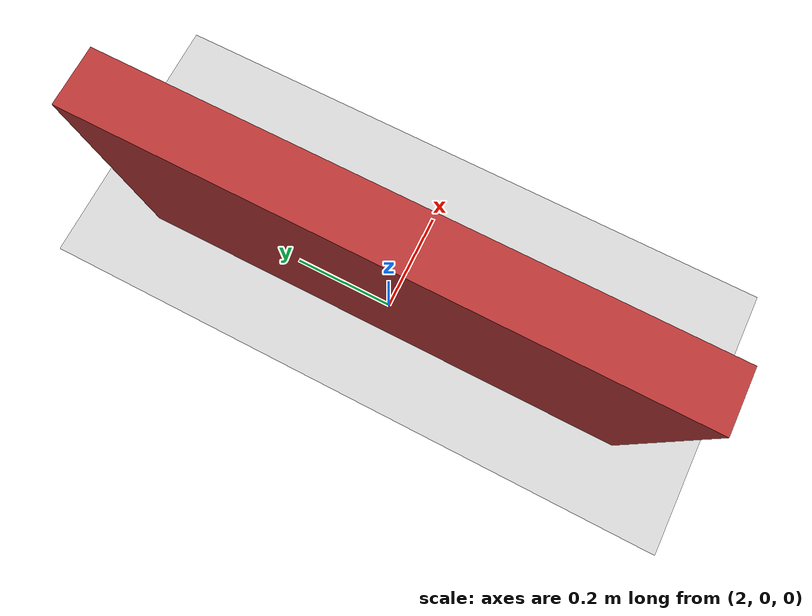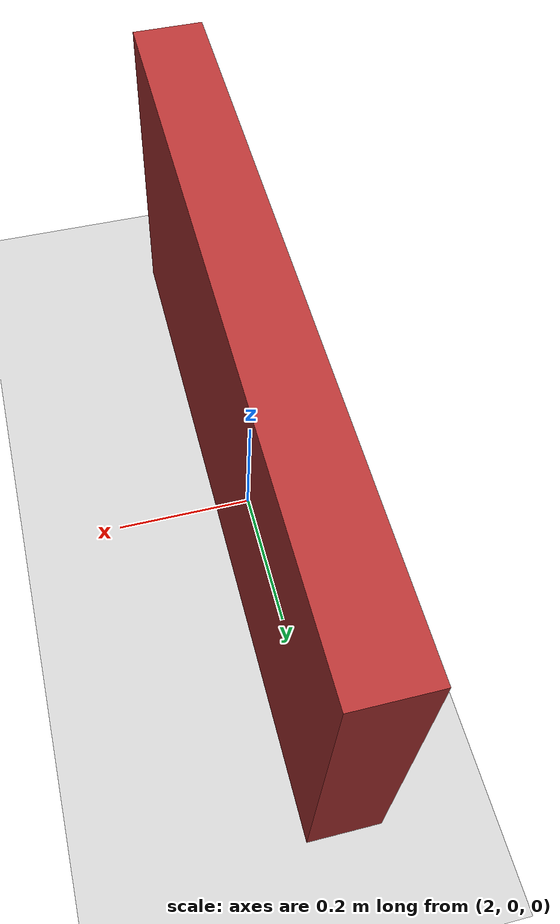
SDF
<?xml version="1.0" ?>

<sdf version="1.10">

  <world name="iot_car_world">

    <!-- Physik                                                 -->

    <physics name="iot_car_physics" type="ignored">
      <max_step_size>0.005</max_step_size>
      <real_time_factor>1.0</real_time_factor>
    </physics>

    <!-- Gazebo-Systeme                                         -->

    <plugin
      filename="gz-sim-physics-system"
      name="gz::sim::systems::Physics">
    </plugin>

    <plugin
      filename="gz-sim-user-commands-system"
      name="gz::sim::systems::UserCommands">
    </plugin>

    <plugin
      filename="gz-sim-scene-broadcaster-system"
      name="gz::sim::systems::SceneBroadcaster">
    </plugin>

    <!-- Sensor-System                                          -->
    <!--
         WICHTIG:
         Die Gazebo-GUI läuft weiterhin mit Ogre 1.
         Die Kamera-Sensoren verwenden separat Ogre 2.
    -->

    <plugin
      filename="gz-sim-sensors-system"
      name="gz::sim::systems::Sensors">

      <render_engine>ogre2</render_engine>

    </plugin>

    <!-- Szene                                                  -->

    <scene>

      <ambient>0.8 0.8 0.8 1</ambient>

      <background>0.7 0.7 0.7 1</background>

      <shadows>true</shadows>

    </scene>

    <!-- Boden                                                  -->

    <model name="ground_plane">

      <static>true</static>

      <link name="link">

        <collision name="collision">

          <geometry>

            <plane>

              <normal>0 0 1</normal>

              <size>100 100</size>

            </plane>

          </geometry>

        </collision>

        <visual name="visual">

          <geometry>

            <plane>

              <normal>0 0 1</normal>

              <size>100 100</size>

            </plane>

          </geometry>

        </visual>

      </link>

    </model>

    <!-- Licht                                                  -->

    <light type="directional" name="sun">

      <cast_shadows>true</cast_shadows>

      <pose>0 0 10 0 0 0</pose>

      <diffuse>0.8 0.8 0.8 1</diffuse>

      <specular>0.2 0.2 0.2 1</specular>

      <direction>-0.5 0.1 -0.9</direction>

    </light>

    <!-- Testwand für Abstandssensor                            -->

    <model name="test_obstacle">

      <static>true</static>

      <pose>2 0 0.25 0 0 0</pose>

      <link name="link">

        <collision name="collision">

          <geometry>

            <box>
              <size>0.10 1.0 0.50</size>
            </box>

          </geometry>

        </collision>

        <visual name="visual">

          <geometry>

            <box>
              <size>0.10 1.0 0.50</size>
            </box>

          </geometry>

          <material>

            <ambient>0.7 0.2 0.2 1</ambient>

            <diffuse>0.7 0.2 0.2 1</diffuse>

          </material>

        </visual>

      </link>

    </model>

  </world>

</sdf>
